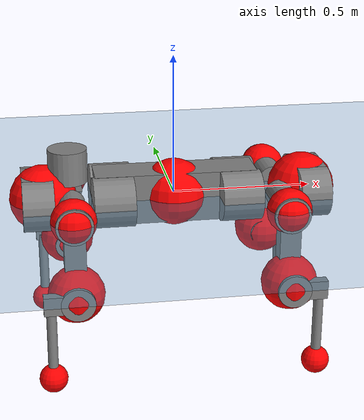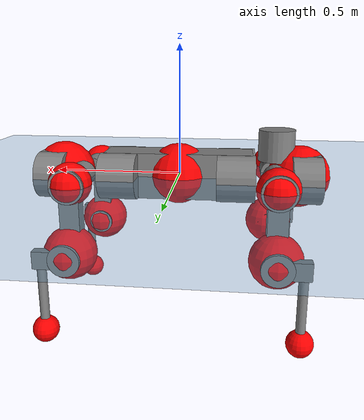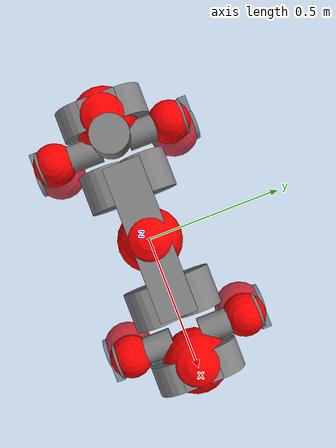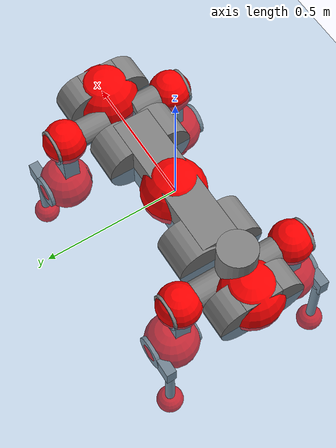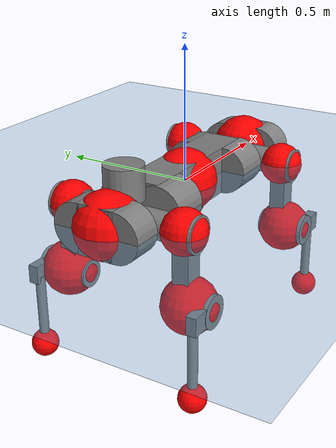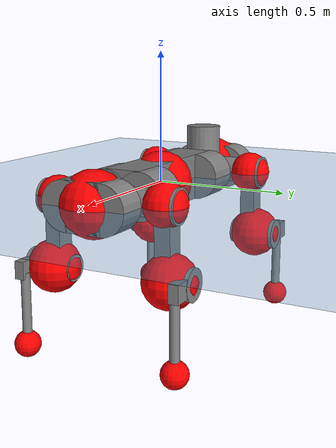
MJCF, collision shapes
<mujoco model="anymal_c">
  <compiler angle="radian" assetdir="assets" balanceinertia="true" inertiafromgeom="false"/>

  <option timestep="0.005" density="1.2" viscosity="2e-05"/>

  <size nkey="1"/>

  <visual>
    <quality shadowsize="8192"/>
    <map shadowclip="0.5"/>
  </visual>

  <default>
    <default class="/">
      <material specular="0" shininess="0.25"/>
      <geom contype="0" conaffinity="0" group="1" solref="-1000 -80"/>
      <site size="0.01 0.005 0.005" group="5"/>
      <general forcelimited="true" forcerange="-80 80" biastype="affine" gainprm="80" biasprm="0 -80 -2"/>
      <default class="anymal_c">
        <joint armature="0.01" damping="0.01" frictionloss="0.1"/>
        <default class="visual">
          <geom type="mesh" group="2"/>
          <default class="visual_zflip"/>
        </default>
        <default class="collision">
          <geom type="cylinder" group="3"/>
          <default class="foot">
            <geom size="0.03 0 0" type="sphere" condim="6" priority="1" friction="0.8 0.02 0.01" solimp="0.015 1 0.03"/>
          </default>
        </default>
      </default>
      <default class="reward_collision_sphere">
        <geom group="5" rgba="1 0 0 1"/>
      </default>
    </default>
  </default>

  <asset>
    <texture type="skybox" colorspace="auto" name="//unnamed_texture_0" builtin="gradient" rgb1="0.95 0.95 0.95" rgb2="0.95 0.95 0.95" width="100" height="600"/>
    <texture type="2d" colorspace="auto" name="texplane" builtin="checker" rgb1="0.345 0.575 0.748" rgb2="0.345 0.575 0.748" markrgb="1 1 1" width="512" height="512"/>
    <texture type="2d" colorspace="linear" name="base" file="base.png"/>
    <texture type="2d" colorspace="linear" name="top_shell" file="top_shell.png"/>
    <texture type="2d" colorspace="linear" name="bottom_shell" file="bottom_shell.png"/>
    <texture type="2d" colorspace="linear" name="remote" file="remote.png"/>
    <texture type="2d" colorspace="linear" name="hatch" file="hatch.png"/>
    <texture type="2d" colorspace="linear" name="handle" file="handle.png"/>
    <texture type="2d" colorspace="linear" name="face" file="face.png"/>
    <texture type="2d" colorspace="linear" name="battery" file="battery.png"/>
    <texture type="2d" colorspace="linear" name="lidar_cage" file="lidar_cage.png"/>
    <texture type="2d" colorspace="linear" name="depth_camera" file="depth_camera.png"/>
    <texture type="2d" colorspace="linear" name="wide_angle_camera" file="wide_angle_camera.png"/>
    <texture type="2d" colorspace="linear" name="lidar" file="lidar.png"/>
    <texture type="2d" colorspace="linear" name="drive" file="drive.png"/>
    <texture type="2d" colorspace="linear" name="hip_l" file="hip_l.png"/>
    <texture type="2d" colorspace="linear" name="shank_l" file="shank_l.png"/>
    <texture type="2d" colorspace="linear" name="foot" file="foot.png"/>
    <texture type="2d" colorspace="linear" name="thigh" file="thigh.png"/>
    <texture type="2d" colorspace="linear" name="shank_r" file="shank_r.png"/>
    <texture type="2d" colorspace="linear" name="hip_r" file="hip_r.png"/>
    <material name="MatPlane" class="/" texture="texplane" texuniform="true" texrepeat="2 2" specular="0.9" shininess="0.5"/>
    <material name="black_plastic" class="/" rgba="0.007 0.007 0.007 1"/>
    <material name="green" class="/" rgba="0.052 0.178 0.033 1"/>
    <material name="red" class="/" rgba="0.178 0.006 0.005 1"/>
    <material name="yellow" class="/" rgba="0.178 0.119 0.006 1"/>
    <material name="lwl" class="/" rgba="0.8 0.8 0.8 1"/>
    <material name="base" class="/" texture="base"/>
    <material name="top_shell" class="/" texture="top_shell"/>
    <material name="bottom_shell" class="/" texture="bottom_shell"/>
    <material name="hip_l" class="/" texture="hip_l"/>
    <material name="thigh" class="/" texture="thigh"/>
    <material name="shank_l" class="/" texture="shank_l"/>
    <material name="foot" class="/" texture="foot"/>
    <material name="hip_r" class="/" texture="hip_r"/>
    <material name="shank" class="/" texture="shank_r"/>
    <material name="hatch" class="/" texture="hatch"/>
    <material name="remote" class="/" texture="remote"/>
    <material name="handle" class="/" texture="handle"/>
    <material name="face" class="/" texture="face"/>
    <material name="depth_camera" class="/" texture="depth_camera"/>
    <material name="wide_angle_camera" class="/" texture="wide_angle_camera"/>
    <material name="battery" class="/" texture="battery"/>
    <material name="lidar_cage" class="/" texture="lidar_cage"/>
    <material name="lidar" class="/" texture="lidar"/>
    <material name="drive" class="/" texture="drive"/>
    <mesh name="base_0" class="/" file="base_0.obj"/>
    <mesh name="base_1" class="/" file="base_1.obj"/>
    <mesh name="base_2" class="/" file="base_2.obj"/>
    <mesh name="base_3" class="/" file="base_3.obj"/>
    <mesh name="base_4" class="/" file="base_4.obj"/>
    <mesh name="base_5" class="/" file="base_5.obj"/>
    <mesh name="top_shell" class="/" file="top_shell.obj"/>
    <mesh name="bottom_shell" class="/" file="bottom_shell.obj"/>
    <mesh name="remote" class="/" file="remote.obj"/>
    <mesh name="handle" class="/" file="handle.obj"/>
    <mesh name="face" class="/" file="face.obj"/>
    <mesh name="wide_angle_camera" class="/" file="wide_angle_camera.obj"/>
    <mesh name="depth_camera" class="/" file="depth_camera.obj"/>
    <mesh name="battery" class="/" file="battery.obj"/>
    <mesh name="lidar_cage" class="/" file="lidar_cage.obj"/>
    <mesh name="lidar" class="/" file="lidar.obj"/>
    <mesh name="drive" class="/" file="drive.obj"/>
    <mesh name="hip_l" class="/" file="hip_l.obj"/>
    <mesh name="thigh" class="/" file="thigh.obj"/>
    <mesh name="shank_l" class="/" file="shank_l.obj"/>
    <mesh name="foot" class="/" file="foot.obj"/>
    <mesh name="hip_r" class="/" file="hip_r.obj"/>
    <mesh name="hatch" class="/" file="hatch.obj"/>
    <mesh name="shank_r" class="/" file="shank_r.obj"/>
  </asset>

  <worldbody>
    <geom name="floor" class="/" size="100 100 0.125" type="plane" group="0" material="MatPlane"/>
    <light name="toplight_shadow" class="/" pos="0 0 5" dir="0.0990148 0.0990148 -0.990148" type="directional" ambient="0.04 0.04 0.04" diffuse="0.55 0.55 0.55" specular="0.12 0.12 0.12"/>
    <light name="toplight_fill" class="/" pos="0 0 5" dir="0.0990148 0.0990148 -0.990148" type="directional" castshadow="false" ambient="0.04 0.04 0.04" diffuse="0.3 0.3 0.3" specular="0.08 0.08 0.08"/>
    <body name="trunk" childclass="anymal_c" pos="0.00308606 0.00225427 0.00079095" quat="0.999999 -0.000298355 0.000810696 -0.000648734">
      <inertial pos="0.00349186 -0.00130553 0.0433035" quat="0.501423 0.514449 0.483339 0.500301" mass="18.8365" diaginertia="0.70345 0.74915 0.117215"/>
      <joint name="//unnamed_joint_0" type="free" armature="0" damping="0" frictionloss="0"/>
      <geom name="//unnamed_geom_1" class="visual" material="green" mesh="base_0"/>
      <geom name="//unnamed_geom_2" class="visual" material="yellow" mesh="base_1"/>
      <geom name="//unnamed_geom_3" class="visual" material="red" mesh="base_2"/>
      <geom name="//unnamed_geom_4" class="visual" material="black_plastic" mesh="base_3"/>
      <geom name="//unnamed_geom_5" class="visual" material="lwl" mesh="base_4"/>
      <geom name="//unnamed_geom_6" class="visual" material="base" mesh="base_5"/>
      <geom name="trunk_1" class="collision" size="0.289289 0.0698283 0.0897792" type="box"/>
      <geom name="trunk_2" class="collision" size="0.0897792 0.0723222" pos="0.226728 0.0731065 0" quat="0.707107 0 0.707107 0"/>
      <geom name="trunk_3" class="collision" size="0.0897792 0.0723222" pos="-0.226728 0.0731065 0" quat="0.707107 0 0.707107 0"/>
      <geom name="trunk_4" class="collision" size="0.0897792 0.0723222" pos="0.226728 -0.0731065 0" quat="0.707107 0 0.707107 0"/>
      <geom name="trunk_5" class="collision" size="0.0897792 0.0723222" pos="-0.226728 -0.0731065 0" quat="0.707107 0 0.707107 0"/>
      <geom name="//unnamed_geom_12" class="visual" material="top_shell" mesh="top_shell"/>
      <geom name="//unnamed_geom_13" class="visual" material="bottom_shell" mesh="bottom_shell"/>
      <geom name="//unnamed_geom_14" class="visual" material="remote" mesh="remote"/>
      <geom name="//unnamed_geom_15" class="visual" material="handle" mesh="handle"/>
      <geom name="//unnamed_geom_16" class="visual" pos="0.432086 0 0" quat="1 0 0 0" material="face" mesh="face"/>
      <geom name="trunk_6" class="collision" size="0.0548651 0.0698283 0.0897792" pos="0.48942 0 0" type="box"/>
      <geom name="//unnamed_geom_18" class="collision" size="0.0897792 0.0548651" pos="0.48942 0.0731065 0" quat="0.707107 0 0.707107 0"/>
      <geom name="//unnamed_geom_19" class="collision" size="0.0897792 0.0548651" pos="0.48942 -0.0731065 0" quat="0.707107 0 0.707107 0"/>
      <geom name="//unnamed_geom_20" class="visual" pos="0.481231 0 -0.0254123" quat="0.965926 0 0.258819 0" material="depth_camera" mesh="depth_camera"/>
      <geom name="//unnamed_geom_21" class="visual" pos="0.534766 0 0.0135603" material="wide_angle_camera" mesh="wide_angle_camera"/>
      <geom name="//unnamed_geom_22" class="visual_zflip" pos="-0.432086 0 0" quat="0 0 0 1" material="face" mesh="face"/>
      <geom name="trunk_7" class="collision" size="0.0548651 0.0698283 0.0897792" pos="-0.48942 0 0" quat="0 0 0 1" type="box"/>
      <geom name="//unnamed_geom_24" class="collision" size="0.0897792 0.0548651" pos="-0.48942 -0.0731065 0" quat="0 -0.707107 0 0.707107"/>
      <geom name="//unnamed_geom_25" class="collision" size="0.0897792 0.0548651" pos="-0.48942 0.0731065 0" quat="0 -0.707107 0 0.707107"/>
      <geom name="//unnamed_geom_26" class="visual" pos="-0.481231 0 -0.0254123" quat="0 -0.258819 0 0.965926" material="depth_camera" mesh="depth_camera"/>
      <geom name="//unnamed_geom_27" class="visual_zflip" pos="-0.534766 0 0.0135603" quat="0 0 0 1" material="wide_angle_camera" mesh="wide_angle_camera"/>
      <geom name="//unnamed_geom_28" class="visual" material="battery" mesh="battery"/>
      <geom name="//unnamed_geom_29" class="visual" pos="0 0.0798731 0.0273526" quat="0.683013 -0.183013 0.183013 0.683013" material="depth_camera" mesh="depth_camera"/>
      <geom name="//unnamed_geom_30" class="visual" pos="0 -0.0798731 0.0273526" quat="0.683013 0.183013 0.183013 -0.683013" material="depth_camera" mesh="depth_camera"/>
      <geom name="//unnamed_geom_31" class="visual" pos="-0.379444 0 0.0665789" quat="1 0 0 0" material="lidar_cage" mesh="lidar_cage"/>
      <geom name="trunk_8" class="collision" size="0.0698283 0.0598528" pos="-0.379444 0 0.120929"/>
      <geom name="//unnamed_geom_33" class="visual" pos="-0.379444 7.66192e-07 0.12881" quat="0.707107 0 0 -0.707107" material="lidar" mesh="lidar"/>
      <geom name="//unnamed_geom_34" class="visual" pos="0.312624 0.108566 2.38989e-09" quat="0.258819 0.965926 0 0" material="drive" mesh="drive"/>
      <geom name="//unnamed_geom_35" class="visual" pos="0.312624 -0.108566 -2.38989e-09" quat="0.258819 -0.965926 0 0" material="drive" mesh="drive"/>
      <geom name="//unnamed_geom_36" class="visual" pos="-0.312624 0.108566 -2.38989e-09" quat="0 0 0.965926 -0.258819" material="drive" mesh="drive"/>
      <geom name="//unnamed_geom_37" class="visual" pos="-0.312624 -0.108566 2.38989e-09" quat="0 0 -0.965926 -0.258819" material="drive" mesh="drive"/>
      <geom name="//unnamed_geom_38" class="visual" pos="0.120922 0 0.0661259" quat="1 0 0 0" material="hatch" mesh="hatch"/>
      <geom name="//unnamed_geom_39" class="reward_collision_sphere" size="0.119706"/>
      <geom name="//unnamed_geom_40" class="reward_collision_sphere" size="0.119706" pos="0.469093 0 0"/>
      <geom name="//unnamed_geom_41" class="reward_collision_sphere" size="0.119706" pos="-0.469093 0 0"/>
      <site name="imu" pos="0.252809 0.0490343 0.0384625" size="0.00997547"/>
      <camera name="track" pos="0 -2.08876 0" quat="0.707107 0.707107 0 0" mode="trackcom"/>
      <camera name="ego_camera" pos="0.469093 0 -0.0362334" quat="-0.5 -0.5 0.5 0.5"/>
      <body name="LF_HIP" pos="0.313935 0.109388 0.00474745" quat="0.257409 0.966296 0.00351586 -0.00059267">
        <inertial pos="0.0600316 -0.0135446 -0.00895564" quat="-0.11661 0.718295 -0.129268 0.673606" mass="2.53485" diaginertia="0.00664148 0.00559574 0.00182674"/>
        <joint name="LF_HAA" pos="0 0 0" axis="0.999983 0.0053116 0.00259296" range="-0.840631 0.497417" armature="0.00799922" damping="0.0243086" frictionloss="0.0884672"/>
        <geom name="//unnamed_geom_42" class="visual" pos="0 0.000140586 -2.30912e-05" quat="0.258819 -0.965926 0 0" material="hip_l" mesh="hip_l"/>
        <geom name="//unnamed_geom_43" class="visual" pos="0.0624414 -0.0756376 -0.0426446" quat="0.183013 -0.683013 0.683013 0.183013" material="drive" mesh="drive"/>
        <geom name="//unnamed_geom_44" class="collision" size="0.0498774 0.0698283" pos="0.0624414 -0.0124906 -0.00625479" quat="-0.353553 -0.612372 0.612372 -0.353553"/>
        <body name="LF_THIGH" pos="0.0630492 -0.0762355 -0.0412492" quat="0.183219 -0.683158 0.682781 0.183128">
          <inertial pos="0.0312455 0.0062267 -0.214446" quat="0.992612 -0.00845834 -0.0807959 0.0901236" mass="3.02533" diaginertia="0.0390269 0.0384774 0.002672"/>
          <joint name="LF_HFE" pos="0 0 0" axis="0.99999 0.0034592 -0.00284075" range="-3.16028 2.99052" armature="0.0106193" damping="0.0416291" frictionloss="0.0989557"/>
          <geom name="//unnamed_geom_45" class="visual" pos="-3.88019e-05 -6.11427e-08 0" quat="0.707107 0 0 -0.707107" material="thigh" mesh="thigh"/>
          <geom name="//unnamed_geom_46" class="collision" size="0.0648406 0.0399019" pos="0.0416971 0 0" quat="0.5 0.5 -0.5 -0.5"/>
          <geom name="//unnamed_geom_47" class="collision" size="0.037408 0.0299264 0.140967" pos="0.0312728 0 -0.128007" quat="0.707107 0 0 -0.707107" type="box"/>
          <geom name="//unnamed_geom_48" class="visual" pos="0.104556 0 -0.258163" quat="1 0 0 0" material="drive" mesh="drive"/>
          <geom name="//unnamed_geom_49" class="collision" size="0.0498774 0.0698283" pos="0.0315856 0 -0.258163" quat="0.707107 0 0.707107 0"/>
          <geom name="//unnamed_geom_50" class="reward_collision_sphere" size="0.0798038" pos="0.0260607 0 0"/>
          <body name="LF_SHANK" pos="0.0963857 -0.00686144 -0.260673" quat="1 6.94484e-06 1.15391e-05 3.25604e-06">
            <inertial pos="0.00444733 -0.0626383 -0.07574" quat="0.992636 -0.118705 0.000599301 -0.0241344" mass="0.545078" diaginertia="0.0121958 0.0113273 0.000683378"/>
            <joint name="LF_KFE" pos="0 0 0" axis="1 7.04726e-06 -0.000234522" stiffness="0.0358884" range="-3.19107 3.24649" armature="0.0104611" damping="0.00653015" frictionloss="0.0884882"/>
            <geom name="//unnamed_geom_51" class="visual" pos="-1.26524e-05 -6.74635e-05 0" quat="0.707107 0 0 -0.707107" material="shank_l" mesh="shank_l"/>
            <geom name="LF_kfe_act" class="collision" size="0.0598528 0.0199509" pos="0.0208486 0 0" quat="0.5 0.5 -0.5 -0.5"/>
            <geom name="//unnamed_geom_53" class="collision" size="0.057358 0.0336672 0.0189534" pos="0.0208486 -0.0600507 0" quat="0.5 0.5 -0.5 -0.5" type="box"/>
            <geom name="//unnamed_geom_54" class="visual" pos="0.0136037 -0.0918748 -0.306145" quat="0.382683 0 0 -0.92388" material="foot" mesh="foot"/>
            <geom name="LF_calf" class="collision" size="0.0174571 0.140906" pos="0.0136037 -0.0918531 -0.153072" quat="0.707107 0 0 -0.707107"/>
            <geom name="LF_foot" class="foot" size="0.0370067" pos="0.0136037 -0.0918531 -0.285764" quat="0.707107 0 0 -0.707107"/>
            <geom name="//unnamed_geom_57" class="reward_collision_sphere" size="0.0997547" pos="-0.0521214 0 0"/>
            <geom name="//unnamed_geom_58" class="reward_collision_sphere" size="0.0498774" pos="0.0136037 -0.0918531 -0.285764"/>
            <site name="LF_foot" class="foot" pos="0.0136037 -0.0918531 -0.285764" quat="0.707107 0 0 -0.707107" size="0.00997547"/>
          </body>
        </body>
      </body>
      <body name="RF_HIP" pos="0.312224 -0.109243 -0.00654029" quat="0.258796 -0.965932 0.000464431 0.000706723">
        <inertial pos="0.0576704 0.0187415 -0.00678918" quat="0.134821 0.687439 0.154824 0.696621" mass="2.54946" diaginertia="0.00668905 0.0056129 0.00188784"/>
        <joint name="RF_HAA" pos="0 0 0" axis="1 -4.32641e-05 -9.37744e-06" range="-0.557851 0.756013" armature="0.00998925" damping="0.0119355" frictionloss="0.104289"/>
        <geom name="//unnamed_geom_59" class="visual" pos="0 -0.000140585 -2.30911e-05" quat="0.258819 0.965926 0 0" material="hip_r" mesh="hip_r"/>
        <geom name="//unnamed_geom_60" class="visual" pos="0.0624414 0.0756376 -0.0426446" quat="0.183013 0.683013 0.683013 -0.183013" material="drive" mesh="drive"/>
        <geom name="//unnamed_geom_61" class="collision" size="0.0498774 0.0698283" pos="0.0624414 0.0124906 -0.00625479" quat="-0.353553 0.612372 0.612372 0.353553"/>
        <body name="RF_THIGH" pos="0.0620978 0.0721025 -0.0337611" quat="0.18311 0.683012 0.68302 -0.182889">
          <inertial pos="0.0330492 0.000159469 -0.215694" quat="0.994109 -0.0319002 -0.0862833 0.0573133" mass="2.83969" diaginertia="0.0346126 0.0341751 0.00234804"/>
          <joint name="RF_HFE" pos="0 0 0" axis="0.999961 -0.00616156 0.00624785" stiffness="0.00633961" range="-3.00967 3.05748" armature="0.0118709" damping="0.013258" frictionloss="0.109181"/>
          <geom name="//unnamed_geom_62" class="visual" pos="-3.88019e-05 -6.11427e-08 0" quat="0.707107 0 0 -0.707107" material="thigh" mesh="thigh"/>
          <geom name="//unnamed_geom_63" class="collision" size="0.0648406 0.0399019" pos="0.0416971 0 0" quat="0.5 0.5 0.5 0.5"/>
          <geom name="//unnamed_geom_64" class="collision" size="0.037408 0.0299264 0.140967" pos="0.0312728 0 -0.128007" quat="0.707107 0 0 0.707107" type="box"/>
          <geom name="//unnamed_geom_65" class="visual" pos="0.104556 0 -0.258163" quat="1 0 0 0" material="drive" mesh="drive"/>
          <geom name="//unnamed_geom_66" class="collision" size="0.0498774 0.0698283" pos="0.0315856 0 -0.258163" quat="0.707107 0 0.707107 0"/>
          <geom name="//unnamed_geom_67" class="reward_collision_sphere" size="0.0798038" pos="0.0260607 0 0"/>
          <body name="RF_SHANK" pos="0.102914 0.00261966 -0.25926" quat="1 -4.72529e-06 -0.000188046 0.000113787">
            <inertial pos="0.00801945 0.0654822 -0.0814402" quat="0.993396 0.112878 -5.78186e-05 0.0205554" mass="0.676562" diaginertia="0.0138549 0.0114358 0.000809678"/>
            <joint name="RF_KFE" pos="0 0 0" axis="0.999997 -0.00216693 0.00125861" range="-3.08353 3.16039" armature="0.00813328" damping="0.00882555" frictionloss="0.098783"/>
            <geom name="//unnamed_geom_68" class="visual" pos="-1.26524e-05 6.74633e-05 0" quat="0.707107 0 0 0.707107" material="shank" mesh="shank_r"/>
            <geom name="RF_kfe_act" class="collision" size="0.0598528 0.0199509" pos="0.0208486 0 0" quat="0.5 0.5 0.5 0.5"/>
            <geom name="//unnamed_geom_70" class="collision" size="0.057358 0.0336672 0.0189534" pos="0.0208486 0.0600507 0" quat="0.5 0.5 0.5 0.5" type="box"/>
            <geom name="//unnamed_geom_71" class="visual" pos="0.0136037 0.0918748 -0.306145" quat="0.382683 0 0 0.92388" material="foot" mesh="foot"/>
            <geom name="RF_calf" class="collision" size="0.0174571 0.140906" pos="0.0136037 0.0918531 -0.153072" quat="0.707107 0 0 0.707107"/>
            <geom name="RF_foot" class="foot" size="0.0310209" pos="0.0136037 0.0918531 -0.285764" quat="0.707107 0 0 0.707107"/>
            <geom name="//unnamed_geom_74" class="reward_collision_sphere" size="0.0997547" pos="-0.0521214 0 0"/>
            <geom name="//unnamed_geom_75" class="reward_collision_sphere" size="0.0498774" pos="0.0136037 0.0918531 -0.285764"/>
            <site name="RF_foot" class="foot" pos="0.0136037 0.0918531 -0.285764" quat="0.707107 0 0 0.707107" size="0.00997547"/>
          </body>
        </body>
      </body>
      <body name="LH_HIP" pos="-0.314028 0.109208 0.00610027" quat="-8.82579e-05 8.48695e-05 0.965922 -0.258835">
        <inertial pos="0.0595675 0.013533 -0.00159537" quat="0.137351 0.675575 0.138483 0.711024" mass="2.48186" diaginertia="0.00655587 0.00613125 0.00200021"/>
        <joint name="LH_HAA" pos="0 0 0" axis="0.999997 -0.00190559 -0.00122646" stiffness="0.00560989" range="-0.644061 0.603785" armature="0.00978004" damping="0.0165705" frictionloss="0.070793"/>
        <geom name="//unnamed_geom_76" class="visual" pos="0 -0.000140585 -2.30911e-05" quat="-0.258819 -0.965926 0 0" material="hip_r" mesh="hip_r"/>
        <geom name="//unnamed_geom_77" class="visual" pos="0.0624414 0.0756376 -0.0426446" quat="0.183013 0.683013 0.683013 -0.183013" material="drive" mesh="drive"/>
        <geom name="//unnamed_geom_78" class="collision" size="0.0498774 0.0698283" pos="0.0624414 0.0124906 -0.00625479" quat="-0.353553 0.612372 0.612372 0.353553"/>
        <body name="LH_THIGH" pos="0.0628734 0.0747962 -0.0348463" quat="0.18309 0.683011 0.683 -0.182987">
          <inertial pos="0.0376358 0.00200585 -0.214538" quat="0.993674 -0.0113361 -0.0919867 0.0634223" mass="2.97031" diaginertia="0.0403432 0.0377624 0.00274715"/>
          <joint name="LH_HFE" pos="0 0 0" axis="0.999621 -0.027445 0.00202412" range="-3.02498 3.0971" armature="0.0103586" damping="0.0132732" frictionloss="0.0962757"/>
          <geom name="//unnamed_geom_79" class="visual" pos="-3.88019e-05 -6.11427e-08 0" quat="0.707107 0 0 -0.707107" material="thigh" mesh="thigh"/>
          <geom name="//unnamed_geom_80" class="collision" size="0.0648406 0.0399019" pos="0.0416971 0 0" quat="0.5 0.5 -0.5 -0.5"/>
          <geom name="//unnamed_geom_81" class="collision" size="0.037408 0.0299264 0.140967" pos="0.0312728 0 -0.128007" quat="0.707107 0 0 -0.707107" type="box"/>
          <geom name="//unnamed_geom_82" class="visual" pos="0.104556 0 -0.258163" quat="1 0 0 0" material="drive" mesh="drive"/>
          <geom name="//unnamed_geom_83" class="collision" size="0.0498774 0.0698283" pos="0.0315856 0 -0.258163" quat="0.707107 0 0.707107 0"/>
          <geom name="//unnamed_geom_84" class="reward_collision_sphere" size="0.0798038" pos="0.0260607 0 0"/>
          <body name="LH_SHANK" pos="0.106437 -3.19389e-05 -0.254813" quat="0.999999 -0.00108769 0.000289863 0.000800492">
            <inertial pos="0.00427485 0.0657495 -0.0755983" quat="0.992157 0.11851 -0.0200593 0.0343189" mass="0.606521" diaginertia="0.0125438 0.0114613 0.000672014"/>
            <joint name="LH_KFE" pos="0 0 0" axis="0.999992 -0.000761045 0.00394095" stiffness="0.0396594" range="-3.12371 3.13787" armature="0.0107674" damping="0.0212197" frictionloss="0.0917106"/>
            <geom name="//unnamed_geom_85" class="visual" pos="-1.26524e-05 6.74633e-05 0" quat="-0.707107 0 0 -0.707107" material="shank" mesh="shank_r"/>
            <geom name="LH_kfe_act" class="collision" size="0.0598528 0.0199509" pos="0.0208486 0 0" quat="0.5 0.5 -0.5 -0.5"/>
            <geom name="//unnamed_geom_87" class="collision" size="0.057358 0.0336672 0.0189534" pos="0.0208486 0.0600507 0" quat="0.5 0.5 -0.5 -0.5" type="box"/>
            <geom name="//unnamed_geom_88" class="visual" pos="0.0136037 0.0918748 -0.306145" quat="-0.382683 0 0 -0.92388" material="foot" mesh="foot"/>
            <geom name="LH_calf" class="collision" size="0.0174571 0.140906" pos="0.0136037 0.0918531 -0.153072" quat="0.707107 0 0 -0.707107"/>
            <geom name="LH_foot" class="foot" size="0.0306083" pos="0.0136037 0.0918531 -0.285764" quat="0.707107 0 0 -0.707107"/>
            <geom name="//unnamed_geom_91" class="reward_collision_sphere" size="0.0997547" pos="-0.0521214 0 0"/>
            <geom name="//unnamed_geom_92" class="reward_collision_sphere" size="0.0498774" pos="0.0136037 0.0918531 -0.285764"/>
            <site name="LH_foot" class="foot" pos="0.0136037 0.0918531 -0.285764" quat="0.707107 0 0 -0.707107" size="0.00997547"/>
          </body>
        </body>
      </body>
      <body name="RH_HIP" pos="-0.312808 -0.110572 -0.00326448" quat="-7.38291e-05 -0.000163192 -0.965976 -0.258633">
        <inertial pos="0.0599303 -0.0216004 -0.00450567" quat="-0.128981 0.709843 -0.136577 0.678847" mass="3.01332" diaginertia="0.00766521 0.00650648 0.00218285"/>
        <joint name="RH_HAA" pos="0 0 0" axis="0.999991 0.000945064 -0.00420636" range="-0.710858 0.577304" armature="0.0104826" damping="0.0322813" frictionloss="0.103249"/>
        <geom name="//unnamed_geom_93" class="visual" pos="0 0.000140586 -2.30912e-05" quat="-0.258819 0.965926 0 0" material="hip_l" mesh="hip_l"/>
        <geom name="//unnamed_geom_94" class="visual" pos="0.0624414 -0.0756376 -0.0426446" quat="-0.183013 0.683013 -0.683013 -0.183013" material="drive" mesh="drive"/>
        <geom name="//unnamed_geom_95" class="collision" size="0.0498774 0.0698283" pos="0.0624414 -0.0124906 -0.00625479" quat="0.353553 0.612372 -0.612372 0.353553"/>
        <body name="RH_THIGH" pos="0.0645766 -0.0784537 -0.0444132" quat="-0.182984 0.682981 -0.683044 -0.183042">
          <inertial pos="0.034188 -0.00310487 -0.222667" quat="0.993198 -0.00399218 -0.0781307 0.0862416" mass="3.39974" diaginertia="0.0392044 0.0381795 0.00254989"/>
          <joint name="RH_HFE" pos="0 0 0" axis="0.999989 0.00413286 0.00221706" range="-3.01003 3.02639" armature="0.0104173" damping="0.00827989" frictionloss="0.122762"/>
          <geom name="//unnamed_geom_96" class="visual" pos="-3.88019e-05 -6.11427e-08 0" quat="0.707107 0 0 -0.707107" material="thigh" mesh="thigh"/>
          <geom name="//unnamed_geom_97" class="collision" size="0.0648406 0.0399019" pos="0.0416971 0 0" quat="0.5 0.5 0.5 0.5"/>
          <geom name="//unnamed_geom_98" class="collision" size="0.037408 0.0299264 0.140967" pos="0.0312728 0 -0.128007" quat="0.707107 0 0 0.707107" type="box"/>
          <geom name="//unnamed_geom_99" class="visual" pos="0.104556 0 -0.258163" quat="1 0 0 0" material="drive" mesh="drive"/>
          <geom name="//unnamed_geom_100" class="collision" size="0.0498774 0.0698283" pos="0.0315856 0 -0.258163" quat="0.707107 0 0.707107 0"/>
          <geom name="//unnamed_geom_101" class="reward_collision_sphere" size="0.0798038" pos="0.0260607 0 0"/>
          <body name="RH_SHANK" pos="0.0978718 0.000473161 -0.260175" quat="0.999999 -0.00109907 -0.000418011 0.00037325">
            <inertial pos="0.00657271 -0.0639408 -0.0725266" quat="0.992732 -0.114713 0.000910055 -0.036364" mass="0.629752" diaginertia="0.0125952 0.0115314 0.000721256"/>
            <joint name="RH_KFE" pos="0 0 0" axis="0.999985 0.00412611 -0.00359415" stiffness="0.0050953" range="-3.11924 3.10792" armature="0.010135" damping="0.0413662" frictionloss="0.0961522"/>
            <geom name="//unnamed_geom_102" class="visual" pos="-1.26524e-05 -6.74635e-05 0" quat="0.707107 0 0 -0.707107" material="shank_l" mesh="shank_l"/>
            <geom name="RH_kfe_act" class="collision" size="0.0598528 0.0199509" pos="0.0208486 0 0" quat="0.5 0.5 0.5 0.5"/>
            <geom name="//unnamed_geom_104" class="collision" size="0.057358 0.0336672 0.0189534" pos="0.0208486 -0.0600507 0" quat="0.5 0.5 0.5 0.5" type="box"/>
            <geom name="//unnamed_geom_105" class="visual" pos="0.0136037 -0.0918748 -0.306145" quat="0.382683 0 0 -0.92388" material="foot" mesh="foot"/>
            <geom name="RH_calf" class="collision" size="0.0174571 0.140906" pos="0.0136037 -0.0918531 -0.153072" quat="0.707107 0 0 0.707107"/>
            <geom name="RH_foot" class="foot" size="0.02499" pos="0.0136037 -0.0918531 -0.285764" quat="0.707107 0 0 0.707107"/>
            <geom name="//unnamed_geom_108" class="reward_collision_sphere" size="0.0997547" pos="-0.0521214 0 0"/>
            <geom name="//unnamed_geom_109" class="reward_collision_sphere" size="0.0498774" pos="0.0136037 -0.0918531 -0.285764"/>
            <site name="RH_foot" class="foot" pos="0.0136037 -0.0918531 -0.285764" quat="0.707107 0 0 0.707107" size="0.00997547"/>
          </body>
        </body>
      </body>
    </body>
  </worldbody>

  <contact>
    <pair class="/" geom1="floor" geom2="LF_foot" name="//unnamed_contact_0"/>
    <pair class="/" geom1="floor" geom2="RF_foot" name="//unnamed_contact_1"/>
    <pair class="/" geom1="floor" geom2="LH_foot" name="//unnamed_contact_2"/>
    <pair class="/" geom1="floor" geom2="RH_foot" name="//unnamed_contact_3"/>
  </contact>

  <actuator>
    <general name="LF_HAA" class="/" joint="LF_HAA" forcerange="-88.025 88.025" gainprm="77.6564" biasprm="0 -77.6564 -1.72044"/>
    <general name="LF_HFE" class="/" joint="LF_HFE" forcerange="-65.0973 65.0973" gainprm="77.6564" biasprm="0 -77.6564 -1.72044"/>
    <general name="LF_KFE" class="/" joint="LF_KFE" forcerange="-97.2703 97.2703" gainprm="77.6564" biasprm="0 -77.6564 -1.72044"/>
    <general name="RF_HAA" class="/" joint="RF_HAA" forcerange="-88.4164 88.4164" gainprm="77.6564" biasprm="0 -77.6564 -1.72044"/>
    <general name="RF_HFE" class="/" joint="RF_HFE" forcerange="-74.7281 74.7281" gainprm="77.6564" biasprm="0 -77.6564 -1.72044"/>
    <general name="RF_KFE" class="/" joint="RF_KFE" forcerange="-54.5205 54.5205" gainprm="77.6564" biasprm="0 -77.6564 -1.72044"/>
    <general name="LH_HAA" class="/" joint="LH_HAA" forcerange="-61.507 61.507" gainprm="77.6564" biasprm="0 -77.6564 -1.72044"/>
    <general name="LH_HFE" class="/" joint="LH_HFE" forcerange="-78.4056 78.4056" gainprm="77.6564" biasprm="0 -77.6564 -1.72044"/>
    <general name="LH_KFE" class="/" joint="LH_KFE" forcerange="-90.825 90.825" gainprm="77.6564" biasprm="0 -77.6564 -1.72044"/>
    <general name="RH_HAA" class="/" joint="RH_HAA" forcerange="-82.4882 82.4882" gainprm="77.6564" biasprm="0 -77.6564 -1.72044"/>
    <general name="RH_HFE" class="/" joint="RH_HFE" forcerange="-102.931 102.931" gainprm="77.6564" biasprm="0 -77.6564 -1.72044"/>
    <general name="RH_KFE" class="/" joint="RH_KFE" forcerange="-92.6753 92.6753" gainprm="77.6564" biasprm="0 -77.6564 -1.72044"/>
  </actuator>

  <sensor>
    <gyro site="imu" name="imu_angular_velocity"/>
    <velocimeter site="imu" name="imu_linear_velocity"/>
    <framelinvel objtype="site" objname="LF_foot" name="LF_foot_global_linear_velocity"/>
    <framelinvel objtype="site" objname="RF_foot" name="RF_foot_global_linear_velocity"/>
    <framelinvel objtype="site" objname="LH_foot" name="LH_foot_global_linear_velocity"/>
    <framelinvel objtype="site" objname="RH_foot" name="RH_foot_global_linear_velocity"/>
  </sensor>

  <keyframe>
    <key name="home" qpos="0 0 0.55 1 0 0 0 0 0.4 -0.8 0 -0.4 0.8 0 -0.4 0.8 0 0.4 -0.8"/>
  </keyframe>
</mujoco>
